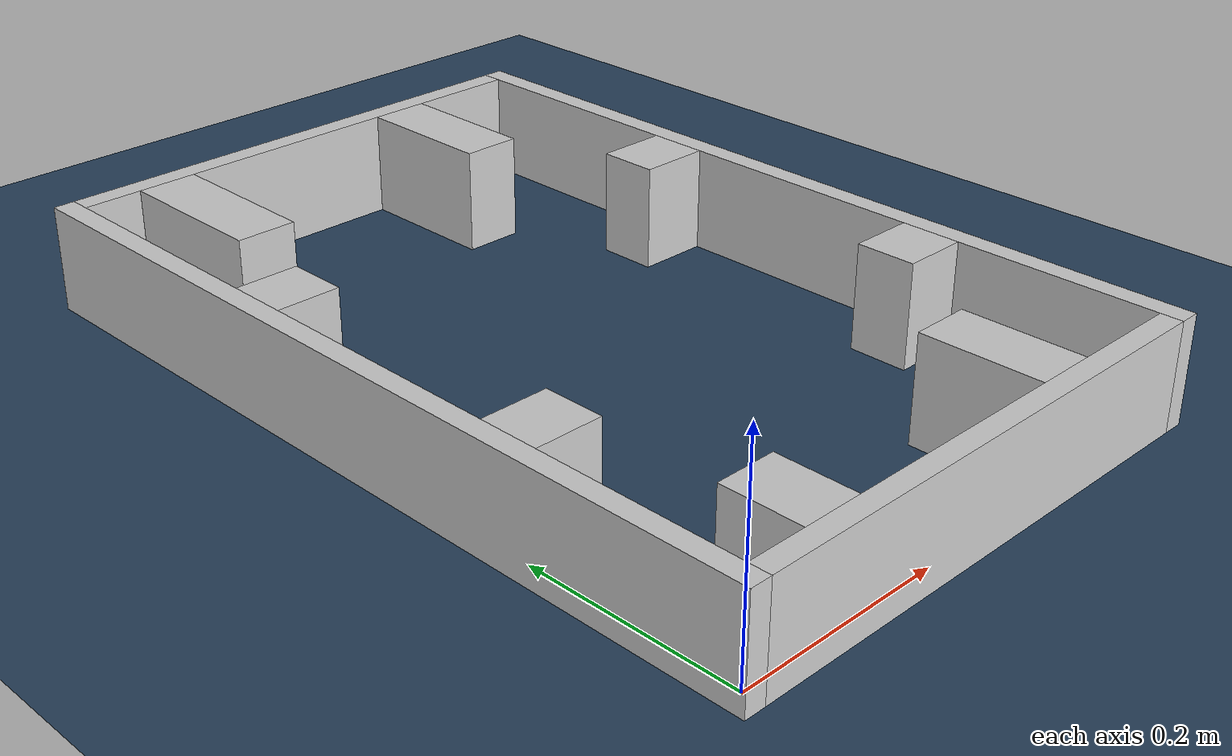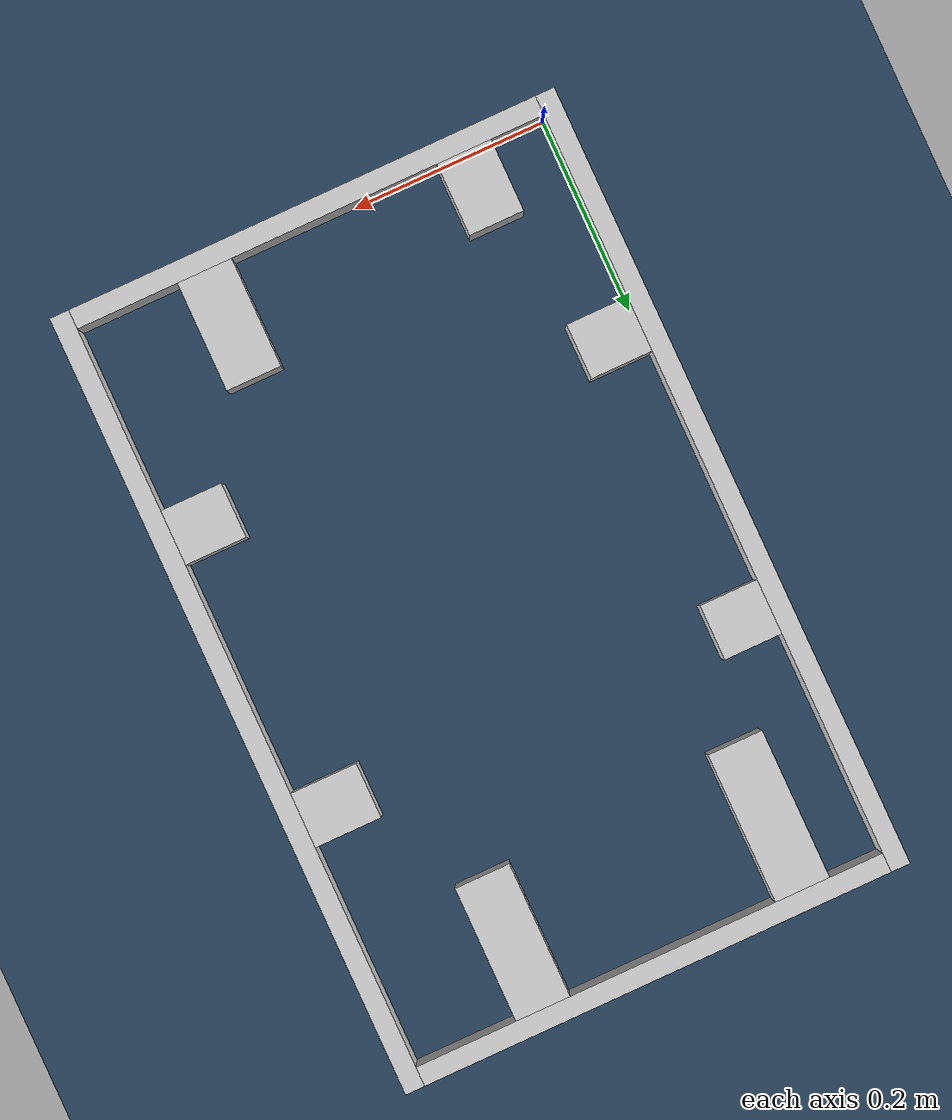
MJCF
<?xml version="1.0" ?>
<mujoco model="generated_real_template">
  <compiler angle="degree"/>
  <option timestep="0.002" integrator="implicitfast" iterations="100" cone="elliptic"/>
  <default>
    <geom density="1"/>
  </default>
  <asset>
    <texture builtin="gradient" height="3072" rgb1="0.3 0.5 0.7" rgb2="0 0 0" type="skybox" width="512"/>
    <texture builtin="checker" height="300" mark="edge" markrgb="0.8 0.8 0.8" name="groundplane" rgb1="0.2 0.3 0.4" rgb2="0.1 0.2 0.3" type="2d" width="300"/>
    <material name="groundplane" reflectance="0.2" texrepeat="5 5" texture="groundplane" texuniform="true"/>
  </asset>
  <worldbody>
    <light dir="0 0 -1" directional="true" pos="0 0 1.5"/>
    <geom name="floor" type="plane" condim="4" friction="0.5 0.005 0.001" material="groundplane" size="0 0 0.05"/>
    <body name="walls">
      <geom name="wall_boundary_left" type="box" condim="4" friction="1.0 0.005 0.0001" rgba="0.8 0.8 0.8 1" pos="-0.010000 0.387500 0.050000" euler="0 0 0.000000" size="0.010000 0.407500 0.050000"/>
      <geom name="wall_boundary_right" type="box" condim="4" friction="1.0 0.005 0.0001" rgba="0.8 0.8 0.8 1" pos="0.500000 0.387500 0.050000" euler="0 0 0.000000" size="0.010000 0.407500 0.050000"/>
      <geom name="wall_boundary_bottom" type="box" condim="4" friction="1.0 0.005 0.0001" rgba="0.8 0.8 0.8 1" pos="0.245000 -0.010000 0.050000" euler="0 0 0.000000" size="0.245000 0.010000 0.050000"/>
      <geom name="wall_boundary_top" type="box" condim="4" friction="1.0 0.005 0.0001" rgba="0.8 0.8 0.8 1" pos="0.245000 0.785000 0.050000" euler="0 0 0.000000" size="0.245000 0.010000 0.050000"/>
      <geom name="wall_inner_1_1" type="box" condim="4" friction="1.0 0.005 0.0001" rgba="0.8 0.8 0.8 1" pos="0.356507 0.056566 0.050000" euler="0 0 90.000000" size="0.056566 0.028500 0.050000"/>
      <geom name="wall_inner_1_2" type="box" condim="4" friction="1.0 0.005 0.0001" rgba="0.8 0.8 0.8 1" pos="0.356507 0.705338 0.050000" euler="0 0 90.000000" size="0.069662 0.028500 0.050000"/>
      <geom name="wall_inner_2_1" type="box" condim="4" friction="1.0 0.005 0.0001" rgba="0.8 0.8 0.8 1" pos="0.029973 0.516221 0.050000" euler="0 0 0.000000" size="0.029973 0.028500 0.050000"/>
      <geom name="wall_inner_2_2" type="box" condim="4" friction="1.0 0.005 0.0001" rgba="0.8 0.8 0.8 1" pos="0.455421 0.516221 0.050000" euler="0 0 0.000000" size="0.034579 0.028500 0.050000"/>
      <geom name="wall_inner_3_1" type="box" condim="4" friction="1.0 0.005 0.0001" rgba="0.8 0.8 0.8 1" pos="0.031952 0.219353 0.050000" euler="0 0 0.000000" size="0.031952 0.028500 0.050000"/>
      <geom name="wall_inner_3_2" type="box" condim="4" friction="1.0 0.005 0.0001" rgba="0.8 0.8 0.8 1" pos="0.458176 0.219353 0.050000" euler="0 0 0.000000" size="0.031824 0.028500 0.050000"/>
      <geom name="wall_inner_4_1" type="box" condim="4" friction="1.0 0.005 0.0001" rgba="0.8 0.8 0.8 1" pos="0.083972 0.037494 0.050000" euler="0 0 90.000000" size="0.037494 0.028500 0.050000"/>
      <geom name="wall_inner_4_2" type="box" condim="4" friction="1.0 0.005 0.0001" rgba="0.8 0.8 0.8 1" pos="0.083972 0.697781 0.050000" euler="0 0 90.000000" size="0.077219 0.028500 0.050000"/>
    </body>
  </worldbody>
</mujoco>
